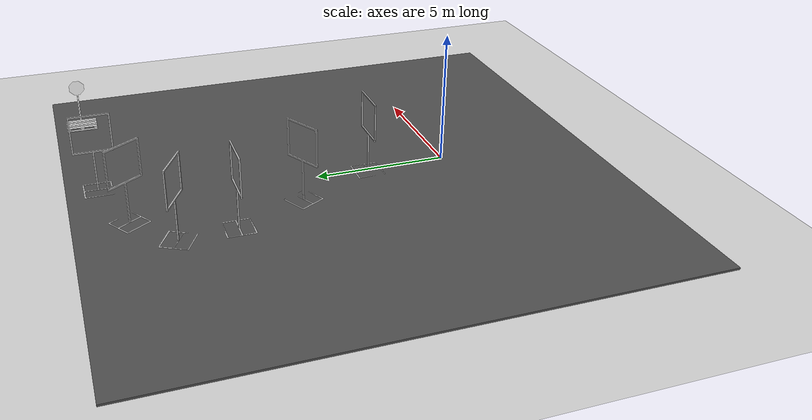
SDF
<sdf version="1.6">
 <world name="default">
  <light name="sun" type="directional">
   <pose>0 0 10 0 -0 0</pose>
   <diffuse>0.8 0.8 0.8 1</diffuse>
   <specular>0.2 0.2 0.2 1</specular>
   <attenuation>
    <range>1000</range>
    <constant>0.9</constant>
    <linear>0.01</linear>
    <quadratic>0.001</quadratic>
   </attenuation>
   <direction>-0.5 0.1 -0.9</direction>
  </light>
  <model name="ground_plane">
   <static>1</static>
   <link name="link">
    <collision name="collision">
     <geometry><plane><normal>0 0 1</normal><size>100 100</size></plane></geometry>
     <surface><friction><ode><mu>100</mu><mu2>50</mu2></ode></friction></surface>
    </collision>
    <visual name="visual">
     <cast_shadows>0</cast_shadows>
     <geometry><plane><normal>0 0 1</normal><size>100 100</size></plane></geometry>
     <material>
      <script><uri>file://media/materials/scripts/gazebo.material</uri><name>Gazebo/Grey</name></script>
     </material>
    </visual>
   </link>
  </model>
  <gravity>0 0 -9.8</gravity>
  <magnetic_field>6e-06 2.3e-05 -4.2e-05</magnetic_field>
  <atmosphere type="adiabatic"/>
  <physics name="default_physics" default="0" type="ode">
   <max_step_size>0.001</max_step_size>
   <real_time_factor>1</real_time_factor>
   <real_time_update_rate>1000</real_time_update_rate>
  </physics>
  <scene><ambient>0.4 0.4 0.4 1</ambient><background>0.7 0.7 0.7 1</background><shadows>1</shadows></scene>
  <spherical_coordinates>
   <surface_model>EARTH_WGS84</surface_model>
   <latitude_deg>0</latitude_deg>
   <longitude_deg>0</longitude_deg>
   <elevation>0</elevation>
   <heading_deg>0</heading_deg>
  </spherical_coordinates>
  <model name="asphalt_plane">
   <static>1</static>
   <link name="link">
    <collision name="collision"><geometry><box><size>20 20 0.1</size></box></geometry></collision>
    <visual name="visual">
     <cast_shadows>0</cast_shadows>
     <geometry><box><size>20 20 0.1</size></box></geometry>
     <material>
      <script>
       <uri>model://asphalt_plane/materials/scripts</uri>
       <uri>model://asphalt_plane/materials/textures</uri>
       <name>vrc/asphalt</name>
      </script>
     </material>
    </visual>
   </link>
   <pose>-0.078978 4.07971 0 0 -0 0</pose>
  </model>
  <model name="dronerace gate 2018">
   <static>1</static>
   <pose>-0.15083 3.07679 0 0 -0 0</pose>
   <link name="dronerace gate 2018">
    <visual name="gate">
     <geometry><mesh><uri>model://dronerace_gate_2018/normal_gate_2018.dae</uri></mesh></geometry>
    </visual>
    <collision name="gate_collision">
     <geometry><mesh><uri>model://dronerace_gate_2018/normal_gate_2018.dae</uri></mesh></geometry>
    </collision>
   </link>
  </model>
  <model name="dronerace gate 2018_0">
   <static>1</static>
   <pose>-1.4981 6.00755 0 0 -0 0.5</pose>
   <link name="dronerace gate 2018">
    <visual name="gate">
     <geometry><mesh><uri>model://dronerace_gate_2018/normal_gate_2018.dae</uri></mesh></geometry>
    </visual>
    <collision name="gate_collision">
     <geometry><mesh><uri>model://dronerace_gate_2018/normal_gate_2018.dae</uri></mesh></geometry>
    </collision>
   </link>
  </model>
  <model name="dronerace gate 2018_1">
   <static>1</static>
   <pose>-2.70707 8.63534 0 0 -0 0</pose>
   <link name="dronerace gate 2018">
    <visual name="gate">
     <geometry><mesh><uri>model://dronerace_gate_2018/normal_gate_2018.dae</uri></mesh></geometry>
    </visual>
    <collision name="gate_collision">
     <geometry><mesh><uri>model://dronerace_gate_2018/normal_gate_2018.dae</uri></mesh></geometry>
    </collision>
   </link>
  </model>
  <model name="dronerace gate 2018_2">
   <static>1</static>
   <pose>-2.85209 10.7286 0 0 0 -0.5</pose>
   <link name="dronerace gate 2018">
    <visual name="gate">
     <geometry><mesh><uri>model://dronerace_gate_2018/normal_gate_2018.dae</uri></mesh></geometry>
    </visual>
    <collision name="gate_collision">
     <geometry><mesh><uri>model://dronerace_gate_2018/normal_gate_2018.dae</uri></mesh></geometry>
    </collision>
   </link>
  </model>
  <model name="dronerace gate 2018_3">
   <static>1</static>
   <pose>-1.17086 12.1145 0 0 0 -1</pose>
   <link name="dronerace gate 2018">
    <visual name="gate">
     <geometry><mesh><uri>model://dronerace_gate_2018/normal_gate_2018.dae</uri></mesh></geometry>
    </visual>
    <collision name="gate_collision">
     <geometry><mesh><uri>model://dronerace_gate_2018/normal_gate_2018.dae</uri></mesh></geometry>
    </collision>
   </link>
  </model>
  <model name="dronerace gate 2018_4">
   <static>1</static>
   <pose>1.51528 12.9186 0 0 -0 1.57</pose>
   <link name="dronerace gate 2018">
    <visual name="gate">
     <geometry><mesh><uri>model://dronerace_gate_2018/normal_gate_2018.dae</uri></mesh></geometry>
    </visual>
    <collision name="gate_collision">
     <geometry><mesh><uri>model://dronerace_gate_2018/normal_gate_2018.dae</uri></mesh></geometry>
    </collision>
   </link>
  </model>
  <model name="Stop Sign">
   <static>1</static>
   <link name="link">
    <collision name="collision">
     <geometry><mesh><uri>model://stop_sign/meshes/stop_sign.dae</uri></mesh></geometry>
    </collision>
    <visual name="visual">
     <geometry><mesh><uri>model://stop_sign/meshes/stop_sign.dae</uri></mesh></geometry>
     <material>
      <script>
       <uri>model://stop_sign/materials/scripts</uri>
       <uri>model://stop_sign/materials/textures</uri>
       <name>StopSign/Diffuse</name>
      </script>
     </material>
    </visual>
   </link>
   <pose>7.85636 13.0253 0 0 0 -1.57</pose>
  </model>
  <model name="euro_pallet">
   <link name="link">
    <inertial>
     <mass>20</mass>
     <inertia><ixx>2.43</ixx><ixy>0</ixy><ixz>0</ixz><iyy>1.1</iyy><iyz>0</iyz><izz>3.47</izz></inertia>
    </inertial>
    <collision name="collision">
     <pose>0 0 0.05 0 -0 0</pose>
     <geometry><mesh><uri>model://euro_pallet/meshes/pallet.dae</uri><scale>0.1 0.1 0.1</scale></mesh></geometry>
    </collision>
    <visual name="visual">
     <pose>0 0 0.05 0 -0 0</pose>
     <geometry><mesh><uri>model://euro_pallet/meshes/pallet.dae</uri><scale>0.1 0.1 0.1</scale></mesh></geometry>
    </visual>
   </link>
   <pose>7.18193 13.0284 0.121995 -3e-06 1.1e-05 -0.01694</pose>
  </model>
 </world>
</sdf>
